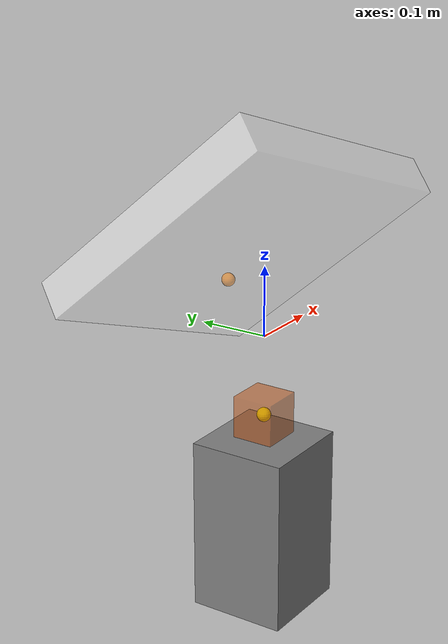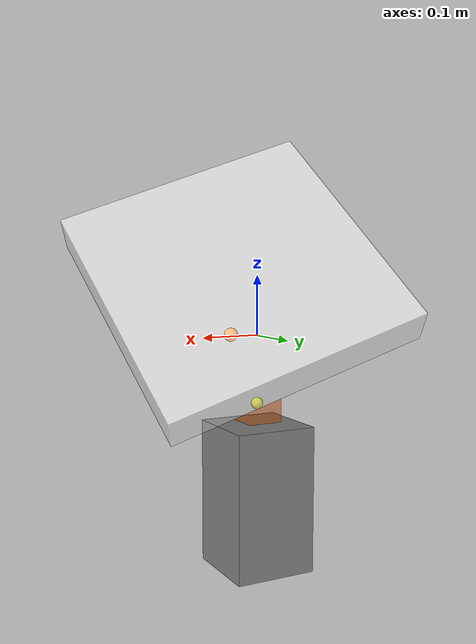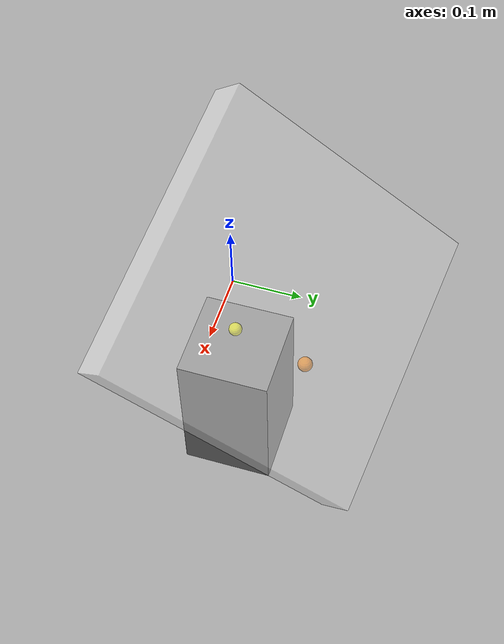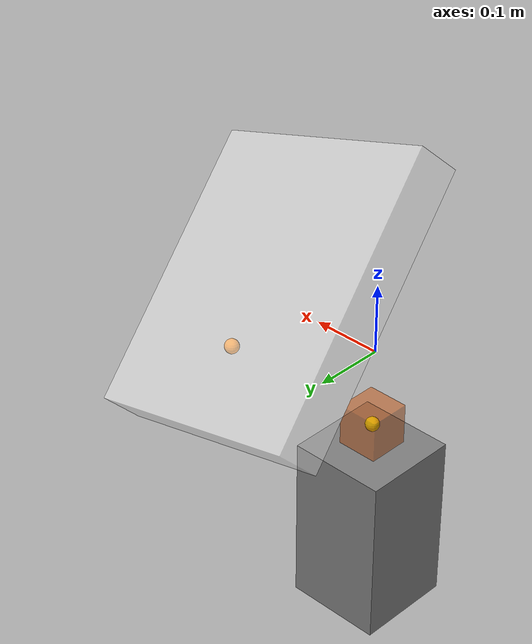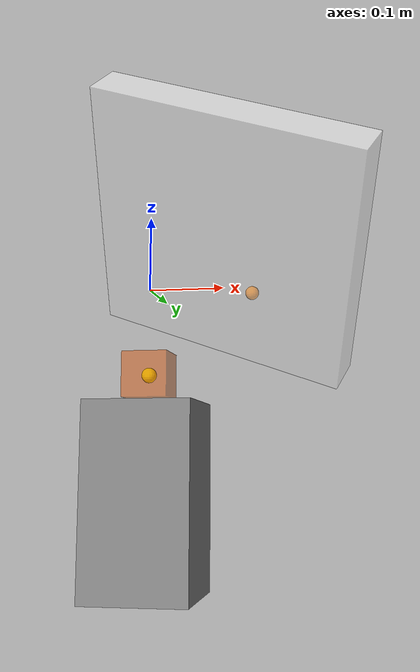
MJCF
<mujoco model="test">
  <compiler angle="radian"/>
  <option timestep="0.001" integrator="implicitfast"/>
  <visual>
    <map force="0.1" zfar="60"/>
    <rgba haze="0.15 0.25 0.35 1"/>
    <global offwidth="2560" offheight="1440" elevation="-20" azimuth="120"/>
  </visual>
  <visual>
    <map force="0.1" zfar="30"/>
    <rgba haze="0.15 0.25 0.35 1"/>
      <!--offwidth="2560" offheight="1440"-->
    <global
      elevation="20"
      azimuth="10"
      />
    <headlight ambient=".8 .8 .8" specular=".8 .8 .8"/>
  </visual>
  <option gravity="0 0 -9.8"/>
  <worldbody>
    <body name="arm">
      <geom name="arm" type="box" fromto="0.08 .08 .08 .1 .12 .12" size=".2" density="800"
        rgba="1 1 1 .5"/>
      <joint type="slide" axis="1 1 1" pos=".1 0 0" stiffness="2000" damping="100" name="arm"/>
      <body name="arm_core" pos=".12 .14 .02">
        <geom name="arm_core" type="sphere" size=".01" pos="0 0 0" density="1" rgba="1 .5 0 1"/>
      </body>
    </body>
    <body>
      <geom name="stand" type="box" fromto="0 0 -.15 0 0 -.4" size=".07" density="800"/>
    </body>
    <body pos="0 0 -.115">
      <freejoint/>
      <geom name="ball" type="box" size=".03 .03 .03" density="600" rgba=".8 .3 0 .5"/>
      <body name="ball_core" pos="0 0 0">
        <geom name="ball_core" type="sphere" size=".01" pos="0 0 0" density="1" rgba="1 1 0 1"/>
      </body>
    </body>
  </worldbody>
  <contact>
    <pair geom1="arm_core" geom2="ball_core" friction="2 2 .01 .0002 .0002" solimp="0.1 0.99 0.0005" solref="0.002 1" margin=".08" gap=".08"/>
  </contact>
  <actuator>
    <position joint="arm" kv="100" kp="500"/>
    <adhesion name="adh" body="arm_core" gain="800" ctrlrange="0 1"/>
  </actuator>
</mujoco>
